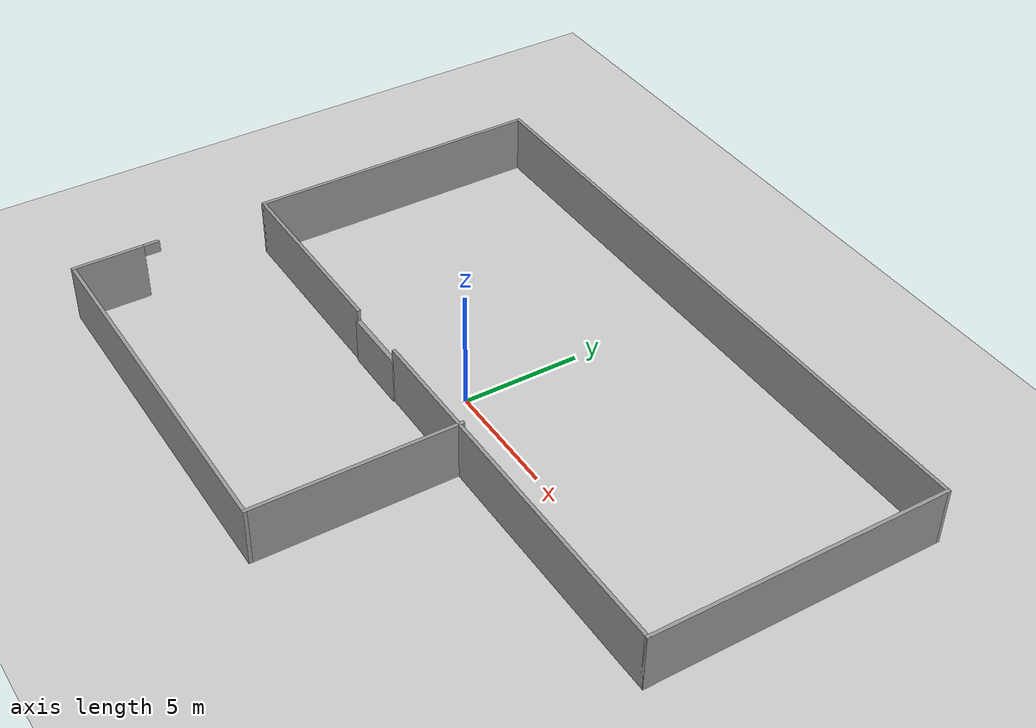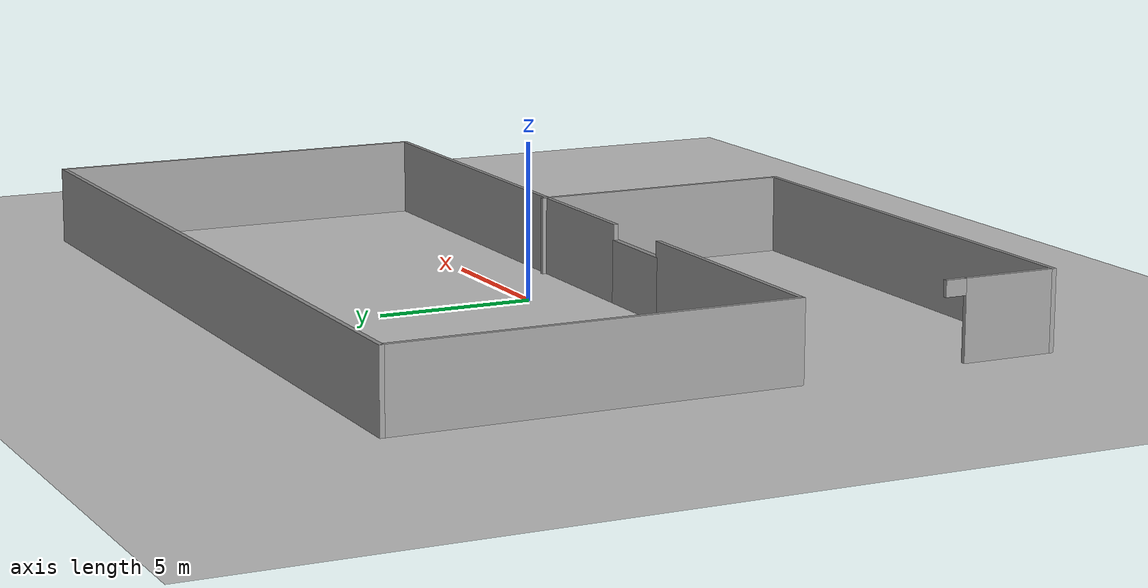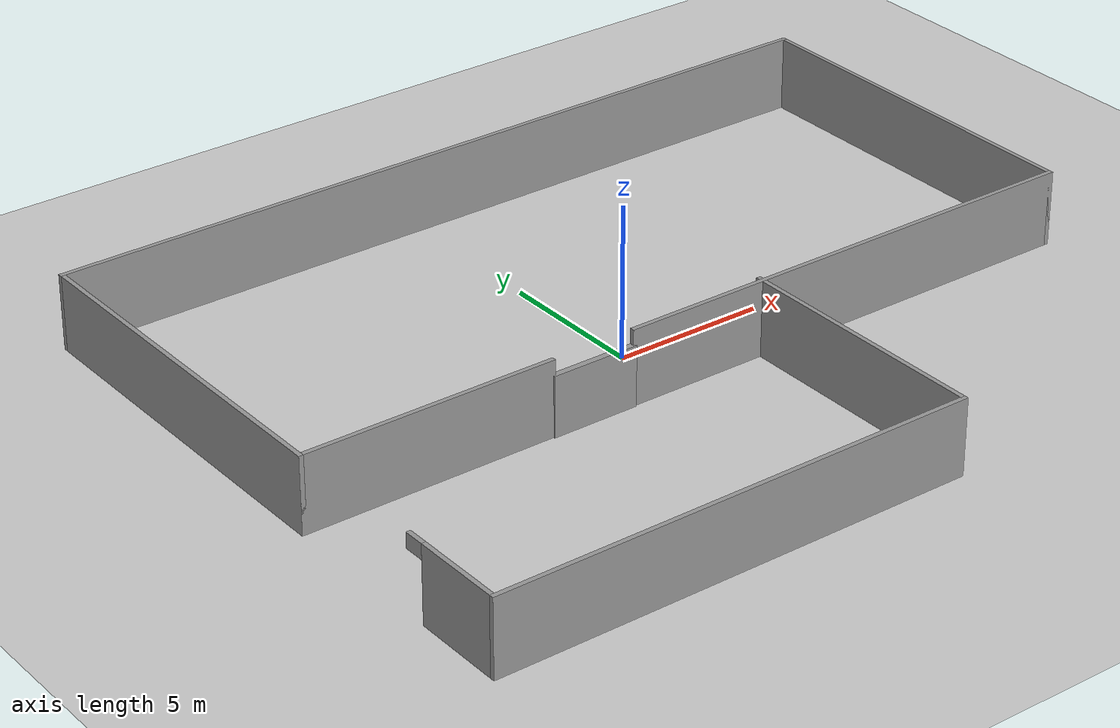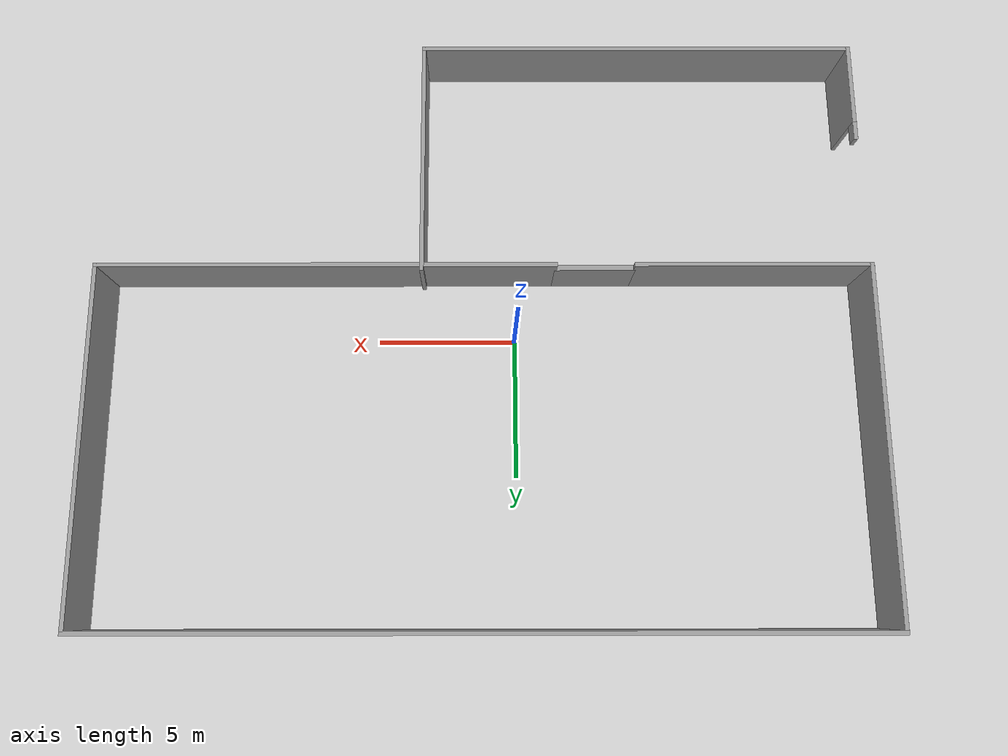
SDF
<sdf version="1.7">
 <world name="default">
  <light name="sun" type="directional">
   <pose>0 0 10 0 -0 0</pose>
   <diffuse>0.8 0.8 0.8 1</diffuse>
   <specular>0.2 0.2 0.2 1</specular>
   <attenuation>
    <range>1000</range>
    <constant>0.9</constant>
    <linear>0.01</linear>
    <quadratic>0.001</quadratic>
   </attenuation>
   <direction>-0.5 0.1 -0.9</direction>
   <spot><inner_angle>0</inner_angle><outer_angle>0</outer_angle><falloff>0</falloff></spot>
  </light>
  <model name="ground_plane">
   <static>1</static>
   <link name="link">
    <collision name="collision">
     <geometry><plane><normal>0 0 1</normal><size>100 100</size></plane></geometry>
     <surface>
      <contact><collide_bitmask>65535</collide_bitmask></contact>
      <friction><ode><mu>100</mu><mu2>50</mu2></ode></friction>
     </surface>
    </collision>
    <visual name="visual">
     <cast_shadows>0</cast_shadows>
     <geometry><plane><normal>0 0 1</normal><size>100 100</size></plane></geometry>
     <material>
      <script><uri>file://media/materials/scripts/gazebo.material</uri><name>Gazebo/Grey</name></script>
     </material>
    </visual>
   </link>
  </model>
  <gravity>0 0 -9.8</gravity>
  <magnetic_field>6e-06 2.3e-05 -4.2e-05</magnetic_field>
  <atmosphere type="adiabatic"/>
  <physics type="ode">
   <max_step_size>0.001</max_step_size>
   <real_time_factor>1</real_time_factor>
   <real_time_update_rate>1000</real_time_update_rate>
  </physics>
  <scene><ambient>0.4 0.4 0.4 1</ambient><background>0.7 0.7 0.7 1</background><shadows>1</shadows></scene>
  <audio><device>default</device></audio>
  <spherical_coordinates>
   <surface_model>EARTH_WGS84</surface_model>
   <latitude_deg>0</latitude_deg>
   <longitude_deg>0</longitude_deg>
   <elevation>0</elevation>
   <heading_deg>0</heading_deg>
  </spherical_coordinates>
  <model name="v2">
   <pose>1.14941 -0.223254 0 0 -0 0</pose>
   <link name="Door_0">
    <collision name="Door_0_Collision">
     <geometry><box><size>2.91011 0.2 2</size></box></geometry>
     <pose>0 0 1 0 -0 0</pose>
    </collision>
    <visual name="Door_0_Visual">
     <pose>0 0 1 0 -0 0</pose>
     <geometry><box><size>2.91011 0.2 2</size></box></geometry>
     <material>
      <script><uri>file://media/materials/scripts/gazebo.material</uri><name>Gazebo/Grey</name></script>
     </material>
    </visual>
    <pose>-3.99402 -2.09122 0 0 -0 0</pose>
   </link>
   <link name="Wall_1">
    <collision name="Wall_1_Collision">
     <geometry><box><size>16.5 0.15 2.5</size></box></geometry>
     <pose>0 0 1.25 0 -0 0</pose>
    </collision>
    <visual name="Wall_1_Visual">
     <pose>0 0 1.25 0 -0 0</pose>
     <geometry><box><size>16.5 0.15 2.5</size></box></geometry>
     <material>
      <script><uri>file://media/materials/scripts/gazebo.material</uri><name>Gazebo/Grey</name></script>
      <ambient>1 1 1 1</ambient>
     </material>
     <meta><layer>0</layer></meta>
    </visual>
    <pose>5.625 -2.06775 0 0 -0 0</pose>
   </link>
   <link name="Wall_2">
    <collision name="Wall_2_Collision">
     <geometry><box><size>12.75 0.15 2.5</size></box></geometry>
     <pose>0 0 1.25 0 -0 0</pose>
    </collision>
    <visual name="Wall_2_Visual">
     <pose>0 0 1.25 0 -0 0</pose>
     <geometry><box><size>12.75 0.15 2.5</size></box></geometry>
     <material>
      <script><uri>file://media/materials/scripts/gazebo.material</uri><name>Gazebo/Grey</name></script>
      <ambient>1 1 1 1</ambient>
     </material>
     <meta><layer>0</layer></meta>
    </visual>
    <pose>13.8 4.23225 0 0 -0 1.5708</pose>
   </link>
   <link name="Wall_3">
    <collision name="Wall_3_Collision">
     <geometry><box><size>27.75 0.15 2.5</size></box></geometry>
     <pose>0 0 1.25 0 -0 0</pose>
    </collision>
    <visual name="Wall_3_Visual">
     <pose>0 0 1.25 0 -0 0</pose>
     <geometry><box><size>27.75 0.15 2.5</size></box></geometry>
     <material>
      <script><uri>file://media/materials/scripts/gazebo.material</uri><name>Gazebo/Grey</name></script>
      <ambient>1 1 1 1</ambient>
     </material>
     <meta><layer>0</layer></meta>
    </visual>
    <pose>0 10.5323 0 0 -0 3.14159</pose>
   </link>
   <link name="Wall_4">
    <collision name="Wall_4_Collision">
     <geometry><box><size>12.75 0.15 2.5</size></box></geometry>
     <pose>0 0 1.25 0 -0 0</pose>
    </collision>
    <visual name="Wall_4_Visual">
     <pose>0 0 1.25 0 -0 0</pose>
     <geometry><box><size>12.75 0.15 2.5</size></box></geometry>
     <material>
      <script><uri>file://media/materials/scripts/gazebo.material</uri><name>Gazebo/Grey</name></script>
      <ambient>1 1 1 1</ambient>
     </material>
     <meta><layer>0</layer></meta>
    </visual>
    <pose>-13.8 4.23225 0 0 -0 -1.5708</pose>
   </link>
   <link name="Wall_5">
    <collision name="Wall_5_Collision">
     <geometry><box><size>8.5 0.15 2.5</size></box></geometry>
     <pose>0 0 1.25 0 -0 0</pose>
    </collision>
    <visual name="Wall_5_Visual">
     <pose>0 0 1.25 0 -0 0</pose>
     <geometry><box><size>8.5 0.15 2.5</size></box></geometry>
     <material>
      <script><uri>file://media/materials/scripts/gazebo.material</uri><name>Gazebo/Grey</name></script>
      <ambient>1 1 1 1</ambient>
     </material>
     <meta><layer>0</layer></meta>
    </visual>
    <pose>-9.625 -2.06775 0 0 -0 0</pose>
   </link>
   <link name="Wall_7">
    <collision name="Wall_7_Collision">
     <geometry><box><size>8.75 0.15 2.5</size></box></geometry>
     <pose>0 0 1.25 0 -0 0</pose>
    </collision>
    <visual name="Wall_7_Visual">
     <pose>0 0 1.25 0 -0 0</pose>
     <geometry><box><size>8.75 0.15 2.5</size></box></geometry>
     <material>
      <script><uri>file://media/materials/scripts/gazebo.material</uri><name>Gazebo/Grey</name></script>
      <ambient>1 1 1 1</ambient>
     </material>
     <meta><layer>0</layer></meta>
    </visual>
    <pose>2.2108 -6.23226 0 0 -0 -1.5708</pose>
   </link>
   <link name="Wall_8">
    <collision name="Wall_8_Collision">
     <geometry><box><size>16 0.15 2.5</size></box></geometry>
     <pose>0 0 1.25 0 -0 0</pose>
    </collision>
    <visual name="Wall_8_Visual">
     <pose>0 0 1.25 0 -0 0</pose>
     <geometry><box><size>16 0.15 2.5</size></box></geometry>
     <material>
      <script><uri>file://media/materials/scripts/gazebo.material</uri><name>Gazebo/Grey</name></script>
      <ambient>1 1 1 1</ambient>
     </material>
     <meta><layer>0</layer></meta>
    </visual>
    <pose>-5.7142 -10.5323 0 0 -0 3.14159</pose>
   </link>
   <link name="Wall_9">
    <pose>-13.6392 -8.73226 0 0 -0 1.5708</pose>
    <visual name="Wall_9_Visual_0">
     <pose>-0.339556 0 1.25 0 -0 0</pose>
     <geometry><box><size>3.07089 0.15 2.5</size></box></geometry>
     <material>
      <script><uri>file://media/materials/scripts/gazebo.material</uri><name>Gazebo/Grey</name></script>
      <ambient>1 1 1 1</ambient>
     </material>
     <meta><layer>0</layer></meta>
    </visual>
    <collision name="Wall_9_Collision_0">
     <geometry><box><size>3.07089 0.15 2.5</size></box></geometry>
     <pose>-0.339556 0 1.25 0 -0 0</pose>
    </collision>
    <visual name="Wall_9_Visual_1">
     <pose>1.53544 0 2.25 0 -0 0</pose>
     <geometry><box><size>0.679112 0.15 0.5</size></box></geometry>
     <material>
      <script><uri>file://media/materials/scripts/gazebo.material</uri><name>Gazebo/Grey</name></script>
      <ambient>1 1 1 1</ambient>
     </material>
     <meta><layer>0</layer></meta>
    </visual>
    <collision name="Wall_9_Collision_1">
     <geometry><box><size>0.679112 0.15 0.5</size></box></geometry>
     <pose>1.53544 0 2.25 0 -0 0</pose>
    </collision>
   </link>
   <static>1</static>
  </model>
 </world>
</sdf>
